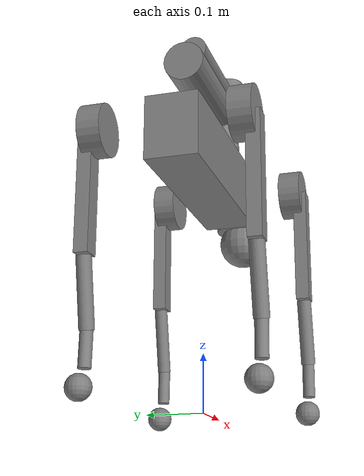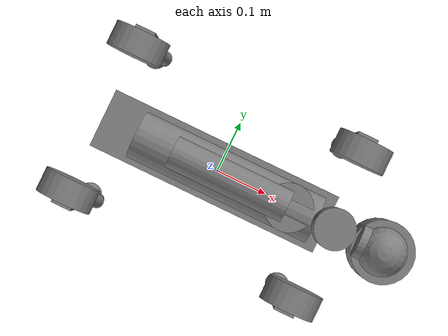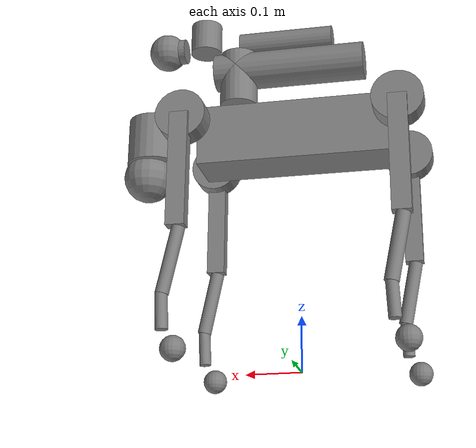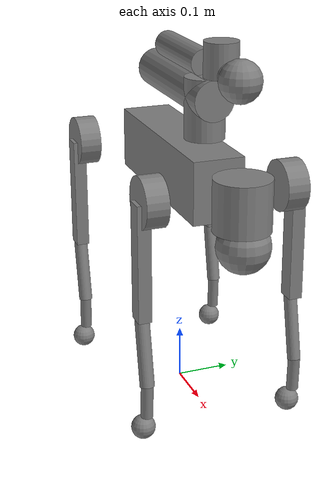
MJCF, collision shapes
<mujoco model="go2_x5">
  <compiler angle="radian" meshdir="assets" autolimits="true" />

  <option cone="elliptic" impratio="100" />

  <default>
    <default class="go2">
      <geom friction="0.4" margin="0.001" condim="1"/>
      <joint axis="0 1 0" damping="0.1" armature="0.01" frictionloss="0.2"/>
      <motor ctrlrange="-23.7 23.7"/>
      <default class="abduction">
        <joint axis="1 0 0" range="-1.0472 1.0472"/>
      </default>
      <default class="hip">
        <default class="front_hip">
          <joint range="-1.5708 3.4907"/>
        </default>
        <default class="back_hip">
          <joint range="-0.5236 4.5379"/>
        </default>
      </default>
      <default class="knee">
        <joint range="-2.7227 -0.83776"/>
        <motor ctrlrange="-45.43 45.43"/>
      </default>
      <default class="visual">
        <geom type="mesh" contype="0" conaffinity="0" group="2"/>
      </default>
      <default class="collision">
        <geom group="3"/>
        <default class="foot">
          <geom size="0.022" pos="-0.002 0 -0.213" priority="1" condim="6"
            friction="0.8 0.02 0.01"/>
        </default>
      </default>
    </default>
  </default>

  <asset>
    <material name="metal" rgba=".9 .95 .95 1" />
    <material name="black" rgba="0 0 0 1" />
    <material name="white" rgba="1 1 1 1" />
    <material name="gray" rgba="0.671705 0.692426 0.774270 1" />

    <mesh file="base_0.obj" />
    <mesh file="base_1.obj" />
    <mesh file="base_2.obj" />
    <mesh file="base_3.obj" />
    <mesh file="base_4.obj" />
    <mesh file="hip_0.obj" />
    <mesh file="hip_1.obj" />
    <mesh file="thigh_0.obj" />
    <mesh file="thigh_1.obj" />
    <mesh file="thigh_mirror_0.obj" />
    <mesh file="thigh_mirror_1.obj" />
    <mesh file="calf_0.obj" />
    <mesh file="calf_1.obj" />
    <mesh file="calf_mirror_0.obj" />
    <mesh file="calf_mirror_1.obj" />
    <mesh file="foot.obj" />

    <mesh name="x5_base_link" file="../../meshes/X5/base_link.STL" />
    <mesh name="x5_link1" file="../../meshes/X5/link1.STL" />
    <mesh name="x5_link2" file="../../meshes/X5/link2.STL" />
    <mesh name="x5_link3" file="../../meshes/X5/link3.STL" />
    <mesh name="x5_link4" file="../../meshes/X5/link4.STL" />
    <mesh name="x5_link5" file="../../meshes/X5/link5.STL" />
    <mesh name="x5_link6" file="../../meshes/X5/link6.STL" />
  </asset>

  <worldbody>
    <body name="base_link" pos="0 0 0.445" childclass="go2">
      <inertial pos="0.021112 0 -0.005366" quat="-0.000543471 0.713435 -0.00173769 0.700719"
        mass="6.921"
        diaginertia="0.107027 0.0980771 0.0244531" />
      <freejoint />
      <geom mesh="base_0" material="black" class="visual" />
      <geom mesh="base_1" material="black" class="visual" />
      <geom mesh="base_2" material="black" class="visual" />
      <geom mesh="base_3" material="white" class="visual" />
      <geom mesh="base_4" material="gray" class="visual" />
      <geom size="0.1881 0.04675 0.057" type="box" class="collision" />
      <geom size="0.05 0.045" pos="0.285 0 0.01" type="cylinder" class="collision" />
      <geom size="0.047" pos="0.293 0 -0.06" class="collision" />
      <site name="imu" pos="-0.02557 0 0.04232" />
      <body name="arm_base_link" pos="0.12 0 0.05">
        <inertial pos="-3.764e-05 0.00006519 0.03037877" mass="0.428"
          fullinertia="0.00060728 0.00060832 0.0001917 3.437e-07 9.79e-07 -1.696e-06" />
        <geom mesh="x5_base_link" class="visual" />
        <body name="arm_link1" pos="0 0 0.0603">
          <inertial pos="0.00571213 0.0002547 0.01750661" mass="0.064"
            fullinertia="0.00008 0.00003 0.00007 0 0.00001 0" />
          <joint name="arm_joint1" axis="0 0 1" range="-2.618 3.14" damping="0.5" frictionloss="0.1" />
          <geom mesh="x5_link1" class="visual" />
          <geom type="cylinder" size="0.036 0.054" pos="0 0 0.02" class="collision" />
          <body name="arm_link2" pos="0.02 0 0.0402">
            <inertial pos="-0.13225701 0.00072373 4.274e-05" mass="1.165"
              fullinertia="0.00057063 0.03669927 0.03683489 0.00011251 0.00001979 1.203e-08" />
            <joint name="arm_joint2" axis="0 1 0" range="0 3.14" damping="0.5" frictionloss="0.1" />
            <geom mesh="x5_link2" class="visual" />
            <geom type="cylinder" size="0.036 0.144" pos="-0.12 0 0" quat="0.707107 0 0.707107 0" class="collision" />
            <body name="arm_link3" pos="-0.264 0 0" quat="-3.67321e-06 -1 0 0">
              <inertial pos="0.19096098 0.00069065 -0.05342172" mass="0.546"
                fullinertia="0.00178249 0.02486615 0.02329476 -0.00003986 0.00571 1.346e-05" />
              <joint name="arm_joint3" axis="0 1 0" range="0 3.14" damping="0.5" frictionloss="0.1" />
              <geom mesh="x5_link3" class="visual" />
              <geom type="cylinder" size="0.024 0.09" pos="0.15 0 -0.055" quat="0.707107 0 0.707107 0" class="collision" />
              <body name="arm_link4" pos="0.245 0 -0.056">
                <inertial pos="0.03092317 0.0066107 -0.03138504" mass="0.080971"
                  fullinertia="0.00017832 0.00021182 0.00011328 0.00001697 0.0000776 -0.00001779" />
                <joint name="arm_joint4" axis="0 1 0" range="-1.5708 1.5708" damping="0.3" frictionloss="0.1" />
                <geom mesh="x5_link4" class="visual" />
                <geom type="cylinder" size="0.03 0.03" pos="0.06575 -0.001 -0.02" class="collision" />
                <body name="arm_link5" pos="0.06575 -0.001 -0.0825">
                  <inertial pos="0.0040681 0.00000885 0.05120675" mass="0.655"
                    fullinertia="0.00254972 0.00255018 0.00026961 2.6e-07 -0.00021534 -5.98e-07" />
                  <joint name="arm_joint5" axis="0 0 1" range="-1.5708 1.5708" damping="0.3" frictionloss="0.1" />
                  <geom mesh="x5_link5" class="visual" />
                  <geom type="cylinder" size="0.024 0.015" pos="0.055 0 0.083" quat="0.707107 0 0.707107 0" class="collision" />
                  <body name="arm_link6" pos="0.02845 0 0.0825" quat="-3.67321e-06 -1 0 0">
                    <inertial pos="0.05435277 0 0" mass="0.581"
                      fullinertia="0.00029 0.00028 0.00045 0 0 -0.00001" />
                    <joint name="arm_joint6" axis="1 0 0" range="-1.5708 1.5708" damping="0.3" frictionloss="0.1" />
                    <geom mesh="x5_link6" class="visual" />
                    <geom type="sphere" size="0.036" pos="0.05 0 0" class="collision" />
                  </body>
                </body>
              </body>
            </body>
          </body>
        </body>
      </body>
      <body name="FL_hip" pos="0.1934 0.0465 0">
        <inertial pos="-0.0054 0.00194 -0.000105" quat="0.497014 0.499245 0.505462 0.498237"
          mass="0.678"
          diaginertia="0.00088403 0.000596003 0.000479967" />
        <joint name="FL_hip_joint" class="abduction" />
        <geom mesh="hip_0" material="metal" class="visual" />
        <geom mesh="hip_1" material="gray" class="visual" />
        <geom size="0.046 0.02" pos="0 0.08 0" quat="1 1 0 0" type="cylinder" class="collision" />
        <body name="FL_thigh" pos="0 0.0955 0">
          <inertial pos="-0.00374 -0.0223 -0.0327" quat="0.829533 0.0847635 -0.0200632 0.551623"
            mass="1.152"
            diaginertia="0.00594973 0.00584149 0.000878787" />
          <joint name="FL_thigh_joint" class="front_hip" />
          <geom mesh="thigh_0" material="metal" class="visual" />
          <geom mesh="thigh_1" material="gray" class="visual" />
          <geom size="0.1065 0.01225 0.017" pos="0 0 -0.1065" quat="0.707107 0 0.707107 0"
            type="box" class="collision" />
          <body name="FL_calf" pos="0 0 -0.213">
            <inertial pos="0.00629595 -0.000622121 -0.141417"
              quat="0.710672 0.00154099 -0.00450087 0.703508"
              mass="0.241352" diaginertia="0.0014901 0.00146356 5.31397e-05" />
            <joint name="FL_calf_joint" class="knee" />
            <geom mesh="calf_0" material="gray" class="visual" />
            <geom mesh="calf_1" material="black" class="visual" />
            <geom size="0.012 0.06" pos="0.008 0 -0.06" quat="0.994493 0 -0.104807 0"
              type="cylinder" class="collision" />
            <geom size="0.011 0.0325" pos="0.02 0 -0.148" quat="0.999688 0 0.0249974 0"
              type="cylinder" class="collision" />
            <geom pos="0 0 -0.213" mesh="foot" class="visual" material="black" />
            <geom name="FL" class="foot" />
            <body name="FL_foot" pos="0 0 -0.213" />
          </body>
        </body>
      </body>
      <body name="FR_hip" pos="0.1934 -0.0465 0">
        <inertial pos="-0.0054 -0.00194 -0.000105" quat="0.498237 0.505462 0.499245 0.497014"
          mass="0.678"
          diaginertia="0.00088403 0.000596003 0.000479967" />
        <joint name="FR_hip_joint" class="abduction" />
        <geom mesh="hip_0" material="metal" class="visual" quat="4.63268e-05 1 0 0" />
        <geom mesh="hip_1" material="gray" class="visual" quat="4.63268e-05 1 0 0" />
        <geom size="0.046 0.02" pos="0 -0.08 0" quat="0.707107 0.707107 0 0" type="cylinder"
          class="collision" />
        <body name="FR_thigh" pos="0 -0.0955 0">
          <inertial pos="-0.00374 0.0223 -0.0327" quat="0.551623 -0.0200632 0.0847635 0.829533"
            mass="1.152"
            diaginertia="0.00594973 0.00584149 0.000878787" />
          <joint name="FR_thigh_joint" class="front_hip" />
          <geom mesh="thigh_mirror_0" material="metal" class="visual" />
          <geom mesh="thigh_mirror_1" material="gray" class="visual" />
          <geom size="0.1065 0.01225 0.017" pos="0 0 -0.1065" quat="0.707107 0 0.707107 0"
            type="box" class="collision" />
          <body name="FR_calf" pos="0 0 -0.213">
            <inertial pos="0.00629595 0.000622121 -0.141417"
              quat="0.703508 -0.00450087 0.00154099 0.710672"
              mass="0.241352" diaginertia="0.0014901 0.00146356 5.31397e-05" />
            <joint name="FR_calf_joint" class="knee" />
            <geom mesh="calf_mirror_0" material="gray" class="visual" />
            <geom mesh="calf_mirror_1" material="black" class="visual" />
            <geom size="0.013 0.06" pos="0.01 0 -0.06" quat="0.995004 0 -0.0998334 0"
              type="cylinder" class="collision" />
            <geom size="0.011 0.0325" pos="0.02 0 -0.148" quat="0.999688 0 0.0249974 0"
              type="cylinder" class="collision" />
            <geom pos="0 0 -0.213" mesh="foot" class="visual" material="black" />
            <geom name="FR" class="foot" />
            <body name="FR_foot" pos="0 0 -0.213" />
          </body>
        </body>
      </body>
      <body name="RL_hip" pos="-0.1934 0.0465 0">
        <inertial pos="0.0054 0.00194 -0.000105" quat="0.505462 0.498237 0.497014 0.499245"
          mass="0.678"
          diaginertia="0.00088403 0.000596003 0.000479967" />
        <joint name="RL_hip_joint" class="abduction" />
        <geom mesh="hip_0" material="metal" class="visual" quat="4.63268e-05 0 1 0" />
        <geom mesh="hip_1" material="gray" class="visual" quat="4.63268e-05 0 1 0" />
        <geom size="0.046 0.02" pos="0 0.08 0" quat="0.707107 0.707107 0 0" type="cylinder"
          class="collision" />
        <body name="RL_thigh" pos="0 0.0955 0">
          <inertial pos="-0.00374 -0.0223 -0.0327" quat="0.829533 0.0847635 -0.0200632 0.551623"
            mass="1.152"
            diaginertia="0.00594973 0.00584149 0.000878787" />
          <joint name="RL_thigh_joint" class="back_hip" />
          <geom mesh="thigh_0" material="metal" class="visual" />
          <geom mesh="thigh_1" material="gray" class="visual" />
          <geom size="0.1065 0.01225 0.017" pos="0 0 -0.1065" quat="0.707107 0 0.707107 0"
            type="box" class="collision" />
          <body name="RL_calf" pos="0 0 -0.213">
            <inertial pos="0.00629595 -0.000622121 -0.141417"
              quat="0.710672 0.00154099 -0.00450087 0.703508"
              mass="0.241352" diaginertia="0.0014901 0.00146356 5.31397e-05" />
            <joint name="RL_calf_joint" class="knee" />
            <geom mesh="calf_0" material="gray" class="visual" />
            <geom mesh="calf_1" material="black" class="visual" />
            <geom size="0.013 0.06" pos="0.01 0 -0.06" quat="0.995004 0 -0.0998334 0"
              type="cylinder" class="collision" />
            <geom size="0.011 0.0325" pos="0.02 0 -0.148" quat="0.999688 0 0.0249974 0"
              type="cylinder" class="collision" />
            <geom pos="0 0 -0.213" mesh="foot" class="visual" material="black" />
            <geom name="RL" class="foot" />
            <body name="RL_foot" pos="0 0 -0.213" />
          </body>
        </body>
      </body>
      <body name="RR_hip" pos="-0.1934 -0.0465 0">
        <inertial pos="0.0054 -0.00194 -0.000105" quat="0.499245 0.497014 0.498237 0.505462"
          mass="0.678"
          diaginertia="0.00088403 0.000596003 0.000479967" />
        <joint name="RR_hip_joint" class="abduction" />
        <geom mesh="hip_0" material="metal" class="visual"
          quat="2.14617e-09 4.63268e-05 4.63268e-05 -1" />
        <geom mesh="hip_1" material="gray" class="visual"
          quat="2.14617e-09 4.63268e-05 4.63268e-05 -1" />
        <geom size="0.046 0.02" pos="0 -0.08 0" quat="0.707107 0.707107 0 0" type="cylinder"
          class="collision" />
        <body name="RR_thigh" pos="0 -0.0955 0">
          <inertial pos="-0.00374 0.0223 -0.0327" quat="0.551623 -0.0200632 0.0847635 0.829533"
            mass="1.152"
            diaginertia="0.00594973 0.00584149 0.000878787" />
          <joint name="RR_thigh_joint" class="back_hip" />
          <geom mesh="thigh_mirror_0" material="metal" class="visual" />
          <geom mesh="thigh_mirror_1" material="gray" class="visual" />
          <geom size="0.1065 0.01225 0.017" pos="0 0 -0.1065" quat="0.707107 0 0.707107 0"
            type="box" class="collision" />
          <body name="RR_calf" pos="0 0 -0.213">
            <inertial pos="0.00629595 0.000622121 -0.141417"
              quat="0.703508 -0.00450087 0.00154099 0.710672"
              mass="0.241352" diaginertia="0.0014901 0.00146356 5.31397e-05" />
            <joint name="RR_calf_joint" class="knee" />
            <geom mesh="calf_mirror_0" material="gray" class="visual" />
            <geom mesh="calf_mirror_1" material="black" class="visual" />
            <geom size="0.013 0.06" pos="0.01 0 -0.06" quat="0.995004 0 -0.0998334 0"
              type="cylinder" class="collision" />
            <geom size="0.011 0.0325" pos="0.02 0 -0.148" quat="0.999688 0 0.0249974 0"
              type="cylinder" class="collision" />
            <geom pos="0 0 -0.213" mesh="foot" class="visual" material="black" />
            <geom name="RR" class="foot" />
            <body name="RR_foot" pos="0 0 -0.213" />
          </body>
        </body>
      </body>
    </body>
  </worldbody>

  <actuator>
    <motor class="abduction" name="FR_hip" joint="FR_hip_joint" />
    <motor class="hip" name="FR_thigh" joint="FR_thigh_joint" />
    <motor class="knee" name="FR_calf" joint="FR_calf_joint" />
    <motor class="abduction" name="FL_hip" joint="FL_hip_joint" />
    <motor class="hip" name="FL_thigh" joint="FL_thigh_joint" />
    <motor class="knee" name="FL_calf" joint="FL_calf_joint" />
    <motor class="abduction" name="RR_hip" joint="RR_hip_joint" />
    <motor class="hip" name="RR_thigh" joint="RR_thigh_joint" />
    <motor class="knee" name="RR_calf" joint="RR_calf_joint" />
    <motor class="abduction" name="RL_hip" joint="RL_hip_joint" />
    <motor class="hip" name="RL_thigh" joint="RL_thigh_joint" />
    <motor class="knee" name="RL_calf" joint="RL_calf_joint" />
    <motor name="arm_joint1" joint="arm_joint1" ctrllimited="true" ctrlrange="-15 15" gear="1" />
    <motor name="arm_joint2" joint="arm_joint2" ctrllimited="true" ctrlrange="-15 15" gear="1" />
    <motor name="arm_joint3" joint="arm_joint3" ctrllimited="true" ctrlrange="-15 15" gear="1" />
    <motor name="arm_joint4" joint="arm_joint4" ctrllimited="true" ctrlrange="-15 15" gear="1" />
    <motor name="arm_joint5" joint="arm_joint5" ctrllimited="true" ctrlrange="-15 15" gear="1" />
    <motor name="arm_joint6" joint="arm_joint6" ctrllimited="true" ctrlrange="-15 15" gear="1" />
  </actuator>

  <sensor>
    <jointpos name="FR_hip_pos" joint="FR_hip_joint" />
    <jointpos name="FR_thigh_pos" joint="FR_thigh_joint" />
    <jointpos name="FR_calf_pos" joint="FR_calf_joint" />
    <jointpos name="FL_hip_pos" joint="FL_hip_joint" />
    <jointpos name="FL_thigh_pos" joint="FL_thigh_joint" />
    <jointpos name="FL_calf_pos" joint="FL_calf_joint" />
    <jointpos name="RR_hip_pos" joint="RR_hip_joint" />
    <jointpos name="RR_thigh_pos" joint="RR_thigh_joint" />
    <jointpos name="RR_calf_pos" joint="RR_calf_joint" />
    <jointpos name="RL_hip_pos" joint="RL_hip_joint" />
    <jointpos name="RL_thigh_pos" joint="RL_thigh_joint" />
    <jointpos name="RL_calf_pos" joint="RL_calf_joint" />
    <jointpos name="arm_joint1_pos" joint="arm_joint1" />
    <jointpos name="arm_joint2_pos" joint="arm_joint2" />
    <jointpos name="arm_joint3_pos" joint="arm_joint3" />
    <jointpos name="arm_joint4_pos" joint="arm_joint4" />
    <jointpos name="arm_joint5_pos" joint="arm_joint5" />
    <jointpos name="arm_joint6_pos" joint="arm_joint6" />

    <jointvel name="FR_hip_vel" joint="FR_hip_joint" />
    <jointvel name="FR_thigh_vel" joint="FR_thigh_joint" />
    <jointvel name="FR_calf_vel" joint="FR_calf_joint" />
    <jointvel name="FL_hip_vel" joint="FL_hip_joint" />
    <jointvel name="FL_thigh_vel" joint="FL_thigh_joint" />
    <jointvel name="FL_calf_vel" joint="FL_calf_joint" />
    <jointvel name="RR_hip_vel" joint="RR_hip_joint" />
    <jointvel name="RR_thigh_vel" joint="RR_thigh_joint" />
    <jointvel name="RR_calf_vel" joint="RR_calf_joint" />
    <jointvel name="RL_hip_vel" joint="RL_hip_joint" />
    <jointvel name="RL_thigh_vel" joint="RL_thigh_joint" />
    <jointvel name="RL_calf_vel" joint="RL_calf_joint" />
    <jointvel name="arm_joint1_vel" joint="arm_joint1" />
    <jointvel name="arm_joint2_vel" joint="arm_joint2" />
    <jointvel name="arm_joint3_vel" joint="arm_joint3" />
    <jointvel name="arm_joint4_vel" joint="arm_joint4" />
    <jointvel name="arm_joint5_vel" joint="arm_joint5" />
    <jointvel name="arm_joint6_vel" joint="arm_joint6" />

    <jointactuatorfrc name="FR_hip_torque" joint="FR_hip_joint" noise="0.01" />
    <jointactuatorfrc name="FR_thigh_torque" joint="FR_thigh_joint" noise="0.01" />
    <jointactuatorfrc name="FR_calf_torque" joint="FR_calf_joint" noise="0.01" />
    <jointactuatorfrc name="FL_hip_torque" joint="FL_hip_joint" noise="0.01" />
    <jointactuatorfrc name="FL_thigh_torque" joint="FL_thigh_joint" noise="0.01" />
    <jointactuatorfrc name="FL_calf_torque" joint="FL_calf_joint" noise="0.01" />
    <jointactuatorfrc name="RR_hip_torque" joint="RR_hip_joint" noise="0.01" />
    <jointactuatorfrc name="RR_thigh_torque" joint="RR_thigh_joint" noise="0.01" />
    <jointactuatorfrc name="RR_calf_torque" joint="RR_calf_joint" noise="0.01" />
    <jointactuatorfrc name="RL_hip_torque" joint="RL_hip_joint" noise="0.01" />
    <jointactuatorfrc name="RL_thigh_torque" joint="RL_thigh_joint" noise="0.01" />
    <jointactuatorfrc name="RL_calf_torque" joint="RL_calf_joint" noise="0.01" />
    <jointactuatorfrc name="arm_joint1_torque" joint="arm_joint1" noise="0.01" />
    <jointactuatorfrc name="arm_joint2_torque" joint="arm_joint2" noise="0.01" />
    <jointactuatorfrc name="arm_joint3_torque" joint="arm_joint3" noise="0.01" />
    <jointactuatorfrc name="arm_joint4_torque" joint="arm_joint4" noise="0.01" />
    <jointactuatorfrc name="arm_joint5_torque" joint="arm_joint5" noise="0.01" />
    <jointactuatorfrc name="arm_joint6_torque" joint="arm_joint6" noise="0.01" />

    <framequat name="imu_quat" objtype="site" objname="imu" />
    <gyro name="imu_gyro" site="imu" />
    <accelerometer name="imu_acc" site="imu" />

    <framepos name="frame_pos" objtype="site" objname="imu" />
    <framelinvel name="frame_vel" objtype="site" objname="imu" />
  </sensor>

  <keyframe>
    <key name="home"
      qpos="0 0 0.27 1 0 0 0 0 0.8 -1.5 0 0.8 -1.5 0 0.8 -1.5 0 0.8 -1.5 0 0 0 0 0 0"
      ctrl="0 0 0 0 0 0 0 0 0 0 0 0 0 0 0 0 0 0" />
  </keyframe>
</mujoco>
